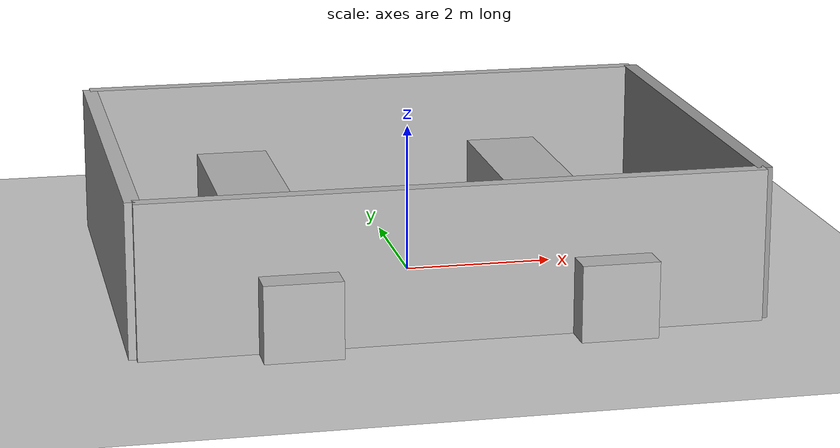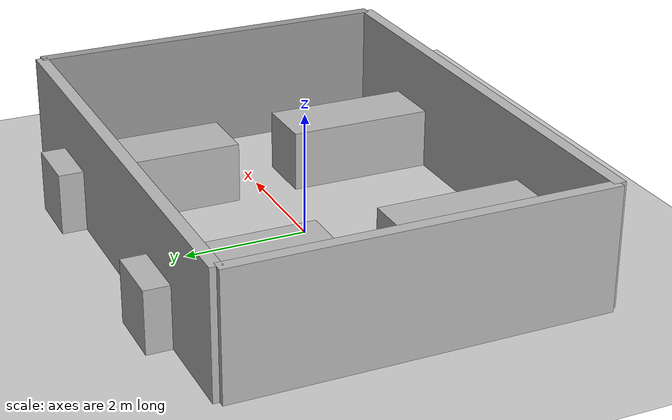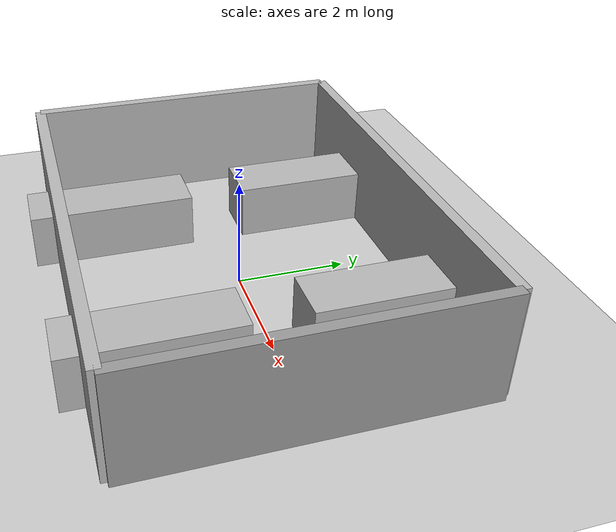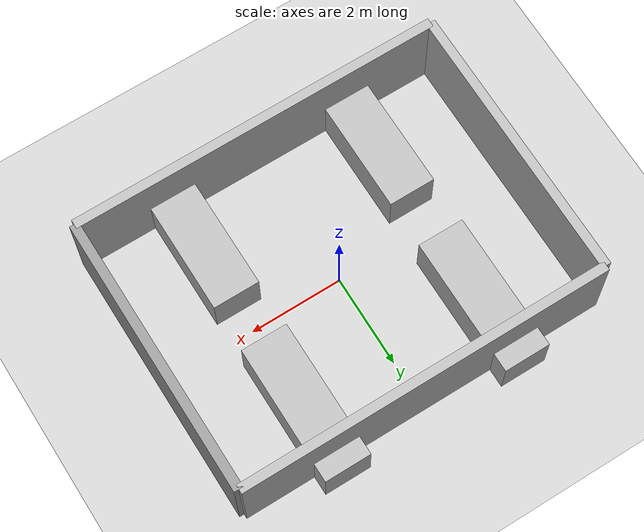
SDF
<sdf version='1.6'>
  <world name='default'>
    <!-- Light source -->
    <include>
      <uri>model://sun</uri>
    </include>

    <!-- Ground Plane -->
    <include>
      <uri>model://ground_plane</uri>
    </include>

    <!-- Wall 1 -->
    <model name='wall_1'>
      <static>true</static>
      <pose>4 0 1 0 0 0</pose> <!-- Adjusted to place the center of the wall -->
      <link name='link'>
        <collision name='collision'>
          <geometry>
            <box>
              <size>0.2 6 2</size> <!-- Thickness, Length, Height -->
            </box>
          </geometry>
        </collision>
        <visual name='visual'>
          <geometry>
            <box>
              <size>0.2 6 2</size>
            </box>
          </geometry>
          <material>
            <script>
              <uri>file://media/materials/scripts/gazebo.material</uri>
              <name>Gazebo/Grey</name>
            </script>
          </material>
        </visual>
      </link>
    </model>

    <!-- Wall 2 -->
    <model name='wall_2'>
      <static>true</static>
      <pose>-4 0 1 0 0 0</pose>
      <link name='link'>
        <collision name='collision'>
          <geometry>
            <box>
              <size>0.2 6 2</size>
            </box>
          </geometry>
        </collision>
        <visual name='visual'>
          <geometry>
            <box>
              <size>0.2 6 2</size>
            </box>
          </geometry>
        </visual>
      </link>
    </model>

    <!-- Wall 3 -->
    <model name='wall_3'>
      <static>true</static>
      <pose>0 3 1 0 0 1.5708</pose> <!-- Rotated 90 degrees -->
      <link name='link'>
        <collision name='collision'>
          <geometry>
            <box>
              <size>0.2 8 2</size>
            </box>
          </geometry>
        </collision>
        <visual name='visual'>
          <geometry>
            <box>
              <size>0.2 8 2</size>
            </box>
          </geometry>
        </visual>
      </link>
    </model>

    <!-- Wall 4 -->
    <model name='wall_4'>
      <static>true</static>
      <pose>0 -3 1 0 0 1.5708</pose>
      <link name='link'>
        <collision name='collision'>
          <geometry>
            <box>
              <size>0.2 8 2</size>
            </box>
          </geometry>
        </collision>
        <visual name='visual'>
          <geometry>
            <box>
              <size>0.2 8 2</size>
            </box>
          </geometry>
        </visual>
      </link>
    </model>

    <model name='shelf_1'>
      <static>true</static>
      <pose>2 2 0.5 0 0 0</pose>
      <link name='link'>
        <collision name='collision'>
          <geometry>
            <box>
              <size>1 3 1</size> <!-- Depth, Length, Height -->
            </box>
          </geometry>
        </collision>
        <visual name='visual'>
          <geometry>
            <box>
              <size>1 3 1</size>
            </box>
          </geometry>
        </visual>
      </link>
    </model>

    <model name='shelf_2'>
      <static>true</static>
      <pose>2 -2 0.5 0 0 0</pose>
      <link name='link'>
        <collision name='collision'>
          <geometry>
            <box>
              <size>1 3 1</size> <!-- Depth, Length, Height -->
            </box>
          </geometry>
        </collision>
        <visual name='visual'>
          <geometry>
            <box>
              <size>1 3 1</size>
            </box>
          </geometry>
        </visual>
      </link>
    </model>

    <model name='shelf_3'>
      <static>true</static>
      <pose>-2 2 0.5 0 0 0</pose>
      <link name='link'>
        <collision name='collision'>
          <geometry>
            <box>
              <size>1 3 1</size> <!-- Depth, Length, Height -->
            </box>
          </geometry>
        </collision>
        <visual name='visual'>
          <geometry>
            <box>
              <size>1 3 1</size>
            </box>
          </geometry>
        </visual>
      </link>
    </model>

    <model name='shelf_4'>
      <static>true</static>
      <pose>-2 -2 0.5 0 0 0</pose>
      <link name='link'>
        <collision name='collision'>
          <geometry>
            <box>
              <size>1 3 1</size> <!-- Depth, Length, Height -->
            </box>
          </geometry>
        </collision>
        <visual name='visual'>
          <geometry>
            <box>
              <size>1 3 1</size>
            </box>
          </geometry>
        </visual>
      </link>
    </model>

  </world>
</sdf>
